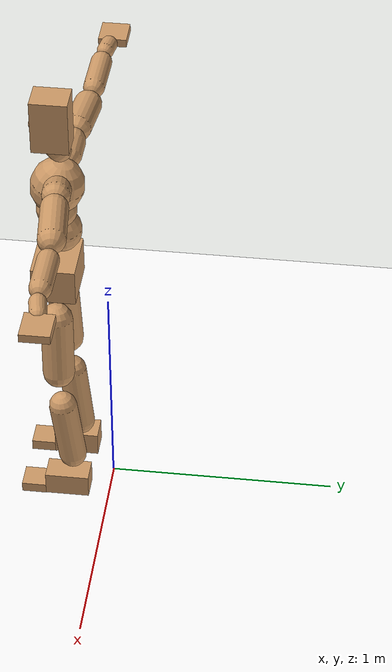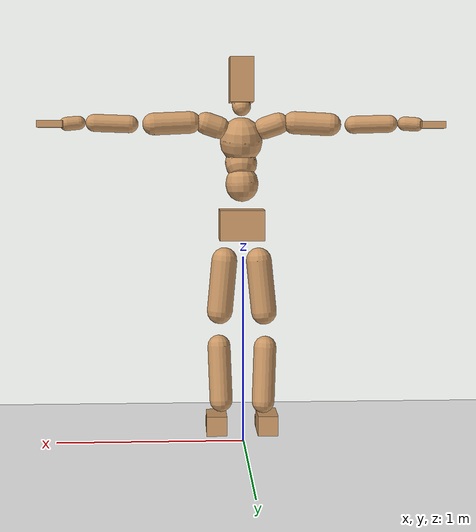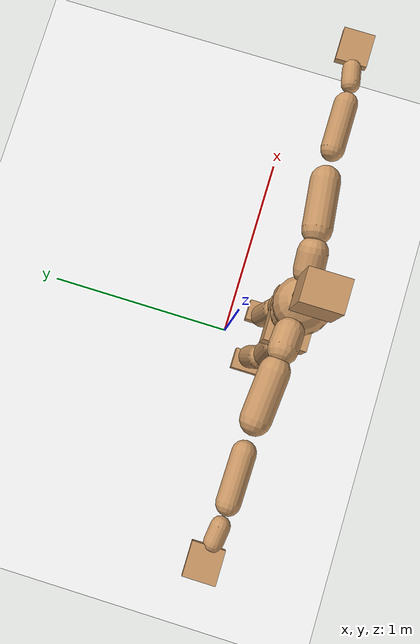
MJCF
<mujoco model="humanoid">
  <option integrator="implicitfast" />

  <visual>
    <global offwidth="1280" offheight="960" />
    <headlight active="1" ambient="0.34 0.34 0.34" diffuse="0.5 0.5 0.5" />
  </visual>

  <default>
    <joint damping="2" stiffness="2" armature="0.01" limited="true" solimplimit="0 .99 .01" />
    <geom condim="1" friction="0.7 0.005 0.0001" solimp=".99 .99 .003" solref="0.015 1" margin="0.001" rgba="0.8 0.6 .4 1" />
    <default class="smplcontact">
      <geom condim="3" friction="1. 0.005 0.0001" solref="0.015 1" solimp="0.98 0.98 0.001" priority="1" />
    </default>
    <default class="stiff_medium">
      <joint stiffness="10" />
    </default>
    <default class="stiff_medium_higher">
      <joint stiffness="50" />
    </default>
    <default class="stiff_high">
      <joint stiffness="100" />
    </default>
  </default>

  <asset>
    <texture type="skybox" builtin="gradient" rgb1="0.99 0.99 0.99" rgb2="0.608 0.828 0.892" width="100" />
    <texture builtin="flat" height="1278" mark="cross" markrgb="1 1 1" name="texgeom" random="0.01" rgb1="0.8 0.6 0.4" rgb2="0.8 0.6 0.4" type="cube" width="127" />
    <texture name="texplane" type="2d" builtin="checker" markrgb="1 1 1" rgb1="0.756 0.772 0.76" rgb2="0.6 0.6 0.6" width="100" height="100" />
    <material name="MatPlane" reflectance="0.5" texture="texplane" texrepeat="1 1" texuniform="true" />
    <material name="geom" texture="texgeom" texuniform="true" />
  </asset>

  <worldbody>
    <light name="tracking_light" pos="0 0 7" dir="0 0 -1" directional="true" cutoff="100" exponent="1" diffuse="1 1 1" specular="0.1 0.1 0.1" mode="trackcom" />
    <camera name="back" pos="0 3 2.4" xyaxes="-1 0 0 0 -1 2" mode="trackcom" />
    <camera name="side" pos="-3 0 2.4" xyaxes="0 -1 0 1 0 2" mode="trackcom" />
    <camera name="front_side" pos="-2.8 -2.8 0.8" xyaxes="0.5 -0.5 0 0.1 0.1 1" mode="trackcom" />
    <geom condim="3" name="floor" pos="0 0 0" rgba="1 1 1 1" size="100 100 .2" type="plane" material="MatPlane" />
    <body name="Pelvis" pos="-0.0018 -0.2233 1.16871" euler="90 0 0">
      <site name="Pelvis" size="0.01" />
      <freejoint name="Pelvis" />
      <geom type="box" pos="-0.0000 -0.0121 -0.0055" size="0.122935 0.08303 0.09545" quat="1.0000 0.0000 0.0000 0.0000" density="3165.830099" name="Pelvis" />
      <body name="L_Hip" pos="0.086875 -0.11425 -0.0085">
        <joint name="L_Hip_x" type="hinge" pos="0 0 0" axis="1 0 0" stiffness="20.117156100000003" range="-160.0 22.92" class="stiff_medium" damping="33.543780489530185" armature="0.024858499524521342"/>
        <joint name="L_Hip_y" type="hinge" pos="0 0 0" axis="0 1 0" stiffness="20.0743359" range="-70.0 70.0" class="stiff_medium" damping="21.332705839970544" armature="0.022669957338649162"/>
        <joint name="L_Hip_z" type="hinge" pos="0 0 0" axis="0 0 1" stiffness="20.0829193" range="-28.65 90.0" class="stiff_medium" damping="22.34492870107814" armature="0.02486171612790704"/>
        <geom type="capsule" density="2040.816327" fromto="0.008625 -0.09375 -0.001125 0.03425 -0.37525 -0.0045" size="0.070725" name="L_Hip" />
        <body name="L_Knee" pos="0.042875 -0.469 -0.005625">
          <joint name="L_Knee_x" type="hinge" pos="0 0 0" axis="1 0 0" range="-5.16 171.89" damping="17.663745268139795" armature="0.02445638967472369" stiffness="3.9867891"/>
          <joint name="L_Knee_y" type="hinge" pos="0 0 0" axis="0 1 0" range="-4.58 6.88" damping="16.915609868560246" armature="0.02230294186631026" stiffness="4.00925048"/>
          <joint name="L_Knee_z" type="hinge" pos="0 0 0" axis="0 0 1" range="-6.88 4.58" damping="17.637874770691177" armature="0.024471688790703397" stiffness="3.972634319999999"/>
          <geom type="capsule" density="1234.567901" fromto="-0.003375 -0.0995 -0.010875 -0.013625 -0.398 -0.04375" size="0.062215" name="L_Knee" />
          <body name="L_Ankle" pos="-0.017 -0.4975 -0.054625">
            <joint name="L_Ankle_x" type="hinge" pos="0 0 0" axis="1 0 0" range="-45.84 45.84" class="stiff_medium" damping="12.413170804446915" armature="0.022514347794301198" stiffness="19.01094"/>
            <joint name="L_Ankle_y" type="hinge" pos="0 0 0" axis="0 1 0" range="-74.48 22.92" class="stiff_medium" damping="6.194262443389276" armature="0.022425033642957906" stiffness="19.01094"/>
            <joint name="L_Ankle_z" type="hinge" pos="0 0 0" axis="0 0 1" range="-4.58 4.58" class="stiff_medium" damping="12.225950831613261" armature="0.02184033008494421" stiffness="19.01094"/>
            <geom type="box" pos="0.029125 -0.029875 0.03025" size="0.055545 0.05336 0.09775" quat="1.0000 0.0000 0.0000 0.0000" density="449.071558" name="L_Ankle" class="smplcontact" />
            <body name="L_Toe" pos="0.033 -0.06975 0.149125">
              <joint name="L_Toe_x" type="hinge" pos="0 0 0" axis="1 0 0" range="-91.67 22.92" armature="0.0215012957705028" damping="4.043562012954828" stiffness="3.8021880000000006"/>
              <joint name="L_Toe_y" type="hinge" pos="0 0 0" axis="0 1 0" range="-4.58 4.58" armature="0.021091335391127376" damping="4.004827644933545" stiffness="3.8021880000000006"/>
              <joint name="L_Toe_z" type="hinge" pos="0 0 0" axis="0 0 1" range="-4.58 4.58" armature="0.020262417570046605" damping="3.9253412828904537" stiffness="3.8021880000000006"/>
              <geom type="box" pos="-0.00375 0.006875 0.031" size="0.05497 0.023 0.05704" quat="1.0000 0.0000 0.0000 0.0000" density="423.206892" name="L_Toe" class="smplcontact" />
            </body>
          </body>
        </body>
      </body>
      <body name="R_Hip" pos="-0.084625 -0.113125 -0.005375">
        <joint name="R_Hip_x" type="hinge" pos="0 0 0" axis="1 0 0" stiffness="20.117156100000003" range="-160.0 22.92" class="stiff_medium" damping="33.543780489530185" armature="0.024858499524521342"/>
        <joint name="R_Hip_y" type="hinge" pos="0 0 0" axis="0 1 0" stiffness="20.0743359" range="-70.0 70.0" class="stiff_medium" damping="21.332705839970544" armature="0.022669957338649162"/>
        <joint name="R_Hip_z" type="hinge" pos="0 0 0" axis="0 0 1" stiffness="20.0829193" range="-90.0 28.65" class="stiff_medium" damping="22.34492870107814" armature="0.02486171612790704"/>
        <geom type="capsule" density="2040.816327" fromto="-0.009625 -0.095625 -0.00225 -0.03825 -0.382625 -0.008875" size="0.06969" name="R_Hip" />
        <body name="R_Knee" pos="-0.047875 -0.47825 -0.011125">
          <joint name="R_Knee_x" type="hinge" pos="0 0 0" axis="1 0 0" range="-5.16 171.89" damping="17.663745268139795" armature="0.02445638967472369" stiffness="3.9867891"/>
          <joint name="R_Knee_y" type="hinge" pos="0 0 0" axis="0 1 0" range="-6.88 4.58" damping="16.915609868560246" armature="0.02230294186631026" stiffness="4.00925048"/>
          <joint name="R_Knee_z" type="hinge" pos="0 0 0" axis="0 0 1" range="-4.58 6.88" damping="17.637874770691177" armature="0.024471688790703397" stiffness="3.972634319999999"/>
          <geom type="capsule" density="1234.567901" fromto="0.004 -0.099625 -0.010625 0.01575 -0.398375 -0.04225" size="0.062215" name="R_Knee" />
          <body name="R_Ankle" pos="0.01975 -0.498 -0.052875">
            <joint name="R_Ankle_x" type="hinge" pos="0 0 0" axis="1 0 0" range="-45.84 45.84" class="stiff_medium" damping="12.413170804446915" armature="0.022514347794301198" stiffness="19.01094"/>
            <joint name="R_Ankle_y" type="hinge" pos="0 0 0" axis="0 1 0" range="-22.92 74.48" class="stiff_medium" damping="6.194262443389276" armature="0.022425033642957906" stiffness="19.01094"/>
            <joint name="R_Ankle_z" type="hinge" pos="0 0 0" axis="0 0 1" range="-4.58 4.58" class="stiff_medium" damping="12.225950831613261" armature="0.02184033008494421" stiffness="19.01094"/>
            <geom type="box" pos="-0.0265 -0.02175 0.032" size="0.055545 0.05497 0.099475" quat="1.0000 0.0000 0.0000 0.0000" density="434.700981" name="R_Ankle" class="smplcontact" />
            <body name="R_Toe" pos="-0.03175 -0.060125 0.154125">
              <joint name="R_Toe_x" type="hinge" pos="0 0 0" axis="1 0 0" range="-91.67 22.92" armature="0.0215012957705028" damping="4.043562012954828" stiffness="3.8021880000000006"/>
              <joint name="R_Toe_y" type="hinge" pos="0 0 0" axis="0 1 0" range="-4.58 4.58" armature="0.021091335391127376" damping="4.004827644933545" stiffness="3.8021880000000006"/>
              <joint name="R_Toe_z" type="hinge" pos="0 0 0" axis="0 0 1" range="-4.58 4.58" armature="0.020262417570046605" damping="3.9253412828904537" stiffness="3.8021880000000006"/>
              <geom type="box" pos="0.00525 0.005625 0.028375" size="0.055085 0.02484 0.056695" quat="1.0000 0.0000 0.0000 0.0000" density="407.384095" name="R_Toe" class="smplcontact" />
            </body>
          </body>
        </body>
      </body>
      <body name="Torso" pos="-0.003 0.1308 -0.03204">
        <joint name="Torso_x" type="hinge" pos="0 0 0" axis="1 0 0" range="-25.78 57.3" class="stiff_medium" damping="27.9771851175194" armature="0.01990875252833071" stiffness="17.473562857142856"/>
        <joint name="Torso_y" type="hinge" pos="0 0 0" axis="0 1 0" range="-57.3 57.3" class="stiff_high" damping="41.032108452007705" armature="0.02465497905993488" stiffness="170.719464"/>
        <joint name="Torso_z" type="hinge" pos="0 0 0" axis="0 0 1" range="-34.38 34.38" class="stiff_high" damping="38.7037262184992" armature="0.021545068080434288" stiffness="173.81917959183673"/>
        <geom type="capsule" density="2040.816327" fromto="0.003 0.07296 0.0006 0.0036 0.08916 0.00072" size="0.088435" name="Torso" />
        <body name="Spine" pos="0.0066 0.16224 0.00132">
          <joint name="Spine_x" type="hinge" pos="0 0 0" axis="1 0 0" stiffness="17.1146502" range="-25.78 57.3" class="stiff_medium" damping="26.88724471348194" armature="0.018773361998434736"/>
          <joint name="Spine_y" type="hinge" pos="0 0 0" axis="0 1 0" stiffness="17.057880400000002" range="-57.3 57.3" class="stiff_high" damping="16.416483417031298" armature="0.024686255840957197"/>
          <joint name="Spine_z" type="hinge" pos="0 0 0" axis="0 0 1" stiffness="34.230740408163264" range="-34.38 34.38" class="stiff_high" damping="23.30935262312265" armature="0.022045077726373416"/>
          <geom type="capsule" density="2040.816327" fromto="0.00084 0.02856 0.01368 0.00096 0.03492 0.0168" size="0.086825" name="Spine" />
          <body name="Chest" pos="0.0018 0.06348 0.03048">
            <joint name="Chest_x" type="hinge" pos="0 0 0" axis="1 0 0" stiffness="16.799314166666665" range="-25.78 57.3" class="stiff_medium" damping="26.216484871305266" armature="0.018183389900817956"/>
            <joint name="Chest_y" type="hinge" pos="0 0 0" axis="0 1 0" stiffness="18.43460755555555" range="-57.3 57.3" class="stiff_high" damping="17.07817694638808" armature="0.02472117718443814"/>
            <joint name="Chest_z" type="hinge" pos="0 0 0" axis="0 0 1" stiffness="33.474103750000005" range="-34.38 34.38" class="stiff_high" damping="23.22021546287726" armature="0.022371290446277038"/>
            <geom type="capsule" density="2040.816327" fromto="-0.00108 0.08184 -0.02076 -0.0012 0.09996 -0.02544" size="0.11523" name="Chest" />
            <body name="Neck" pos="-0.00336 0.25668 -0.05148">
              <joint name="Neck_x" type="hinge" pos="0 0 0" axis="1 0 0" range="-28.65 57.3" class="stiff_medium_higher" damping="12.763808551103033" armature="0.01289831435140676" stiffness="63.15352700000001"/>
              <joint name="Neck_y" type="hinge" pos="0 0 0" axis="0 1 0" range="-40.11 40.11" class="stiff_medium_higher" damping="12.874021806954651" armature="0.013218010878037265" stiffness="62.69492399999999"/>
              <joint name="Neck_z" type="hinge" pos="0 0 0" axis="0 0 1" range="-40.11 40.11" class="stiff_medium_higher" damping="12.622034141340917" armature="0.012866432020450236" stiffness="61.911393000000004"/>
              <geom type="capsule" density="1000" fromto="0.0012 0.0156 0.01236 0.00492 0.0624 0.04932" size="0.05014" name="Neck" />
              <body name="Head" pos="0.00546 0.06825 0.053865">
                <joint name="Head_x" type="hinge" pos="0 0 0" axis="1 0 0" range="-28.65 57.3" class="stiff_medium_higher" damping="2.4910462837194585" armature="0.012762815625000052" stiffness="60.77529999999999"/>
                <joint name="Head_y" type="hinge" pos="0 0 0" axis="0 1 0" range="-40.11 40.11" class="stiff_medium_higher" damping="2.4910462837194536" armature="0.012762815625000003" stiffness="60.77529999999999"/>
                <joint name="Head_z" type="hinge" pos="0 0 0" axis="0 0 1" range="-40.11 40.11" class="stiff_medium_higher" damping="2.4910462837194487" armature="0.012762815624999953" stiffness="60.77529999999999"/>
                <geom type="box" pos="-0.00441 0.09198 -0.01218" size="0.06363 0.12117 0.0798" quat="1.0000 0.0000 0.0000 0.0000" density="1018.069894" name="Head" />
                <geom type="capsule" name="nose" size="0.021 0.0105" pos="0 0.0735 0.0525" quat="1 0 0 0" mass="0" contype="0" conaffinity="0" />
              </body>
            </body>
            <body name="L_Thorax" pos="0.0985 0.152125 -0.042625">
              <joint name="L_Thorax_x" type="hinge" pos="0 0 0" axis="1 0 0" range="-10.89 4.58" class="stiff_medium_higher" damping="43.15926371092657" armature="0.02325977084332514" stiffness="100.10427749999997"/>
              <joint name="L_Thorax_y" type="hinge" pos="0 0 0" axis="0 1 0" range="-28.65 17.19" class="stiff_medium_higher" damping="44.690221719373746" armature="0.024889361083363797" stiffness="100.3047"/>
              <joint name="L_Thorax_z" type="hinge" pos="0 0 0" axis="0 0 1" range="-31.51 40.11" class="stiff_medium_higher" damping="44.69070151323812" armature="0.024890837372076532" stiffness="100.30090450000002"/>
              <geom type="capsule" density="1000" fromto="0.02275 0.007625 -0.00225 0.091 0.0305 -0.008875" size="0.059915" name="L_Thorax" />
              <body name="L_Shoulder" pos="0.11375 0.038125 -0.011125">
                <joint name="L_Shoulder_x" type="hinge" pos="0 0 0" axis="1 0 0" range="-97.4 97.4" class="stiff_medium" damping="12.758502381812189" armature="0.02260763542783086" stiffness="20.0005416"/>
                <joint name="L_Shoulder_y" type="hinge" pos="0 0 0" axis="0 1 0" range="-108.86 80.21" class="stiff_medium" damping="13.383657786355482" armature="0.024826065294315237" stiffness="20.0419167"/>
                <joint name="L_Shoulder_z" type="hinge" pos="0 0 0" axis="0 0 1" range="-97.4 85.94" class="stiff_medium" damping="13.384570758886717" armature="0.024827926499511432" stiffness="20.043148499999997"/>
                <geom type="capsule" density="1000" fromto="0.064875 -0.00325 -0.006875 0.259625 -0.01275 -0.0275" size="0.059455" name="L_Shoulder" />
                <body name="L_Elbow" pos="0.3245 -0.016 -0.034375">
                  <joint name="L_Elbow_x" type="hinge" pos="0 0 0" axis="1 0 0" range="-17.19 4.58" damping="10.356445927381818" armature="0.021590820449987023" stiffness="3.97413234"/>
                  <joint name="L_Elbow_y" type="hinge" pos="0 0 0" axis="0 1 0" range="-180.0 17.19" damping="11.036449341555636" armature="0.024518815531650615" stiffness="3.9741957"/>
                  <joint name="L_Elbow_z" type="hinge" pos="0 0 0" axis="0 0 1" range="-100.84 4.58" damping="11.037395055628792" armature="0.02452857374721188" stiffness="3.9732955000000008"/>
                  <geom type="capsule" density="1000" fromto="0.06225 0.00225 -0.00025 0.24925 0.009 -0.001125" size="0.046575" name="L_Elbow" />
                  <body name="L_Wrist" pos="0.3115 0.01125 -0.0015">
                    <joint name="L_Wrist_x" type="hinge" pos="0 0 0" axis="1 0 0" range="-180.0 22.92" armature="0.021344808577429087" damping="4.060387391568212" stiffness="3.86200366"/>
                    <joint name="L_Wrist_y" type="hinge" pos="0 0 0" axis="0 1 0" range="-17.19 17.19" armature="0.023522200169745565" damping="4.267230545709342" stiffness="3.8706533400000005"/>
                    <joint name="L_Wrist_z" type="hinge" pos="0 0 0" axis="0 0 1" range="-22.92 22.92" armature="0.023642420487012445" damping="4.276580712224981" stiffness="3.8678659400000006"/>
                    <geom type="capsule" density="1000" fromto="0.021 -0.002 -0.00375 0.084 -0.008125 -0.015" size="0.03657" name="L_Wrist" class="smplcontact" />
                    <body name="L_Hand" pos="0.105 -0.01025 -0.018625">
                      <joint name="L_Hand_x" type="hinge" pos="0 0 0" axis="1 0 0" range="-17.19 17.19" armature="0.020272592717515147" damping="3.926326750524553" stiffness="3.8021880000000006"/>
                      <joint name="L_Hand_y" type="hinge" pos="0 0 0" axis="0 1 0" range="-51.57 51.57" armature="0.02203670957240944" damping="4.093597750040918" stiffness="3.8021880000000006"/>
                      <joint name="L_Hand_z" type="hinge" pos="0 0 0" axis="0 0 1" range="-91.67 91.67" armature="0.022506959023354135" damping="4.137044585572866" stiffness="3.8021880000000006"/>
                      <geom type="box" pos="0.061625 0.00125 -0.00725" size="0.067275 0.01817 0.06187" quat="1.0000 0.0000 0.0000 0.0000" density="400.552564" name="L_Hand" class="smplcontact" />
                    </body>
                  </body>
                </body>
              </body>
            </body>
            <body name="R_Thorax" pos="-0.10225 0.1485 -0.04825">
              <joint name="R_Thorax_x" type="hinge" pos="0 0 0" axis="1 0 0" range="-10.89 4.58" class="stiff_medium_higher" damping="43.15926371092657" armature="0.02325977084332514" stiffness="100.10427749999997"/>
              <joint name="R_Thorax_y" type="hinge" pos="0 0 0" axis="0 1 0" range="-17.19 28.65" class="stiff_medium_higher" damping="44.690221719373746" armature="0.024889361083363797" stiffness="100.3047"/>
              <joint name="R_Thorax_z" type="hinge" pos="0 0 0" axis="0 0 1" range="-40.11 31.51" class="stiff_medium_higher" damping="44.69070151323812" armature="0.024890837372076532" stiffness="100.30090450000002"/>
              <geom type="capsule" density="1000" fromto="-0.024 0.008125 -0.00225 -0.096 0.0325 -0.009125" size="0.058765" name="R_Thorax" />
              <body name="R_Shoulder" pos="-0.12 0.04075 -0.011375">
                <joint name="R_Shoulder_x" type="hinge" pos="0 0 0" axis="1 0 0" range="-97.4 97.4" class="stiff_medium" damping="12.758502381812189" armature="0.02260763542783086" stiffness="20.0005416"/>
                <joint name="R_Shoulder_y" type="hinge" pos="0 0 0" axis="0 1 0" range="-80.21 108.86" class="stiff_medium" damping="13.383657786355482" armature="0.024826065294315237" stiffness="20.0419167"/>
                <joint name="R_Shoulder_z" type="hinge" pos="0 0 0" axis="0 0 1" range="-85.94 97.4" class="stiff_medium" damping="13.384570758886717" armature="0.024827926499511432" stiffness="20.043148499999997"/>
                <geom type="capsule" density="1000" fromto="-0.063375 -0.003375 -0.005375 -0.25375 -0.013375 -0.021375" size="0.061065" name="R_Shoulder" />
                <body name="R_Elbow" pos="-0.317125 -0.016625 -0.02675">
                  <joint name="R_Elbow_x" type="hinge" pos="0 0 0" axis="1 0 0" range="-17.19 4.58" damping="10.356445927381818" armature="0.021590820449987023" stiffness="3.97413234"/>
                  <joint name="R_Elbow_y" type="hinge" pos="0 0 0" axis="0 1 0" range="-17.19 180.0" damping="11.036449341555636" armature="0.024518815531650615" stiffness="3.9741957"/>
                  <joint name="R_Elbow_z" type="hinge" pos="0 0 0" axis="0 0 1" range="-4.58 100.84" damping="11.037395055628792" armature="0.02452857374721188" stiffness="3.9732955000000008"/>
                  <geom type="capsule" density="1000" fromto="-0.063875 0.002 -0.001375 -0.25525 0.00775 -0.0055" size="0.04692" name="R_Elbow" />
                  <body name="R_Wrist" pos="-0.319125 0.00975 -0.007">
                    <joint name="R_Wrist_x" type="hinge" pos="0 0 0" axis="1 0 0" range="-180.0 22.92" armature="0.021344808577429087" damping="4.060387391568212" stiffness="3.86200366"/>
                    <joint name="R_Wrist_y" type="hinge" pos="0 0 0" axis="0 1 0" range="-17.19 17.19" armature="0.023522200169745565" damping="4.267230545709342" stiffness="3.8706533400000005"/>
                    <joint name="R_Wrist_z" type="hinge" pos="0 0 0" axis="0 0 1" range="-22.92 22.92" armature="0.023642420487012445" damping="4.276580712224981" stiffness="3.8678659400000006"/>
                    <geom type="capsule" density="1000" fromto="-0.021125 -0.0015 -0.002625 -0.084625 -0.006125 -0.010375" size="0.03749" name="R_Wrist" class="smplcontact" />
                    <body name="R_Hand" pos="-0.10575 -0.007625 -0.012875">
                      <joint name="R_Hand_x" type="hinge" pos="0 0 0" axis="1 0 0" range="-17.19 17.19" armature="0.020272592717515147" damping="3.926326750524553" stiffness="3.8021880000000006"/>
                      <joint name="R_Hand_y" type="hinge" pos="0 0 0" axis="0 1 0" range="-51.57 51.57" armature="0.02203670957240944" damping="4.093597750040918" stiffness="3.8021880000000006"/>
                      <joint name="R_Hand_z" type="hinge" pos="0 0 0" axis="0 0 1" range="-91.67 91.67" armature="0.022506959023354135" damping="4.137044585572866" stiffness="3.8021880000000006"/>
                      <geom type="box" pos="-0.05775 -0.001125 -0.009875" size="0.065435 0.01886 0.06279" quat="1.0000 0.0000 0.0000 0.0000" density="403.679611" name="R_Hand" class="smplcontact" />
                    </body>
                  </body>
                </body>
              </body>
            </body>
          </body>
        </body>
      </body>
    </body>
  </worldbody>
  <actuator>
    <general name="L_Hip_x" joint="L_Hip_x" biastype="affine" gainprm="578.0263751668842" biasprm="-433.17218187118135 -362.1088098000001 -4.472504065270692" ctrllimited="true" ctrlrange="-1 1" forcerange="-724.2176196000001 724.2176196000001" />
    <general name="L_Hip_y" joint="L_Hip_y" biastype="affine" gainprm="441.457703323937" biasprm="0.0 -361.33804620000006 -4.2665411679941085" ctrllimited="true" ctrlrange="-1 1" forcerange="-722.6760924000001 722.6760924000001" />
    <general name="L_Hip_z" joint="L_Hip_z" biastype="affine" gainprm="374.2953766709527" biasprm="193.53578894869736 -361.4925474 -4.4689857402156274" ctrllimited="true" ctrlrange="-1 1" forcerange="-722.9850948 722.9850948" />
    <general name="L_Knee_x" joint="L_Knee_x" biastype="affine" gainprm="554.3819409896047" biasprm="522.0677832318372 -358.81101900000004 -4.415936317034949" ctrllimited="true" ctrlrange="-1 1" forcerange="-717.6220380000001 717.6220380000001" />
    <general name="L_Knee_y" joint="L_Knee_y" biastype="affine" gainprm="36.0859122627682" biasprm="7.242373316262378 -360.83254320000003 -4.2289024671400615" ctrllimited="true" ctrlrange="-1 1" forcerange="-721.6650864000001 721.6650864000001" />
    <general name="L_Knee_z" joint="L_Knee_z" biastype="affine" gainprm="35.7563425479921" biasprm="-7.176229307188642 -357.53708879999994 -4.409468692672794" ctrllimited="true" ctrlrange="-1 1" forcerange="-715.0741775999999 715.0741775999999" />
    <general name="L_Ankle_x" joint="L_Ankle_x" biastype="affine" gainprm="136.88885068068893" biasprm="0.0 -171.09846000000002 -4.137723601482305" ctrllimited="true" ctrlrange="-1 1" forcerange="-342.19692000000003 342.19692000000003" />
    <general name="L_Ankle_y" joint="L_Ankle_y" biastype="affine" gainprm="145.42947269087153" biasprm="-76.98504735052707 -171.09846000000002 -4.12950829559285" ctrllimited="true" ctrlrange="-1 1" forcerange="-342.19692000000003 342.19692000000003" />
    <general name="L_Ankle_z" joint="L_Ankle_z" biastype="affine" gainprm="13.676940142180523" biasprm="0.0 -171.09846000000002 -4.075316943871087" ctrllimited="true" ctrlrange="-1 1" forcerange="-342.19692000000003 342.19692000000003" />
    <general name="L_Toe_x" joint="L_Toe_x" biastype="affine" gainprm="136.87690575480053" biasprm="-82.12136548252498 -136.878768 -1.6174248051819313" ctrllimited="true" ctrlrange="-1 1" forcerange="-273.757536 273.757536" />
    <general name="L_Toe_y" joint="L_Toe_y" biastype="affine" gainprm="10.94155211374442" biasprm="0.0 -136.878768 -1.6019310579734183" ctrllimited="true" ctrlrange="-1 1" forcerange="-273.757536 273.757536" />
    <general name="L_Toe_z" joint="L_Toe_z" biastype="affine" gainprm="10.94155211374442" biasprm="0.0 -136.878768 -1.5701365131561815" ctrllimited="true" ctrlrange="-1 1" forcerange="-273.757536 273.757536" />
    <general name="R_Hip_x" joint="R_Hip_x" biastype="affine" gainprm="578.0263751668842" biasprm="-433.17218187118135 -362.1088098000001 -4.472504065270692" ctrllimited="true" ctrlrange="-1 1" forcerange="-724.2176196000001 724.2176196000001" />
    <general name="R_Hip_y" joint="R_Hip_y" biastype="affine" gainprm="441.457703323937" biasprm="0.0 -361.33804620000006 -4.2665411679941085" ctrllimited="true" ctrlrange="-1 1" forcerange="-722.6760924000001 722.6760924000001" />
    <general name="R_Hip_z" joint="R_Hip_z" biastype="affine" gainprm="374.2953766709527" biasprm="-193.53578894869736 -361.4925474 -4.4689857402156274" ctrllimited="true" ctrlrange="-1 1" forcerange="-722.9850948 722.9850948" />
    <general name="R_Knee_x" joint="R_Knee_x" biastype="affine" gainprm="554.3819409896047" biasprm="522.0677832318372 -358.81101900000004 -4.415936317034949" ctrllimited="true" ctrlrange="-1 1" forcerange="-717.6220380000001 717.6220380000001" />
    <general name="R_Knee_y" joint="R_Knee_y" biastype="affine" gainprm="36.0859122627682" biasprm="-7.242373316262378 -360.83254320000003 -4.2289024671400615" ctrllimited="true" ctrlrange="-1 1" forcerange="-721.6650864000001 721.6650864000001" />
    <general name="R_Knee_z" joint="R_Knee_z" biastype="affine" gainprm="35.7563425479921" biasprm="7.176229307188642 -357.53708879999994 -4.409468692672794" ctrllimited="true" ctrlrange="-1 1" forcerange="-715.0741775999999 715.0741775999999" />
    <general name="R_Ankle_x" joint="R_Ankle_x" biastype="affine" gainprm="136.88885068068893" biasprm="0.0 -171.09846000000002 -4.137723601482305" ctrllimited="true" ctrlrange="-1 1" forcerange="-342.19692000000003 342.19692000000003" />
    <general name="R_Ankle_y" joint="R_Ankle_y" biastype="affine" gainprm="145.42947269087153" biasprm="76.98504735052707 -171.09846000000002 -4.12950829559285" ctrllimited="true" ctrlrange="-1 1" forcerange="-342.19692000000003 342.19692000000003" />
    <general name="R_Ankle_z" joint="R_Ankle_z" biastype="affine" gainprm="13.676940142180523" biasprm="0.0 -171.09846000000002 -4.075316943871087" ctrllimited="true" ctrlrange="-1 1" forcerange="-342.19692000000003 342.19692000000003" />
    <general name="R_Toe_x" joint="R_Toe_x" biastype="affine" gainprm="136.87690575480053" biasprm="-82.12136548252498 -136.878768 -1.6174248051819313" ctrllimited="true" ctrlrange="-1 1" forcerange="-273.757536 273.757536" />
    <general name="R_Toe_y" joint="R_Toe_y" biastype="affine" gainprm="10.94155211374442" biasprm="0.0 -136.878768 -1.6019310579734183" ctrllimited="true" ctrlrange="-1 1" forcerange="-273.757536 273.757536" />
    <general name="R_Toe_z" joint="R_Toe_z" biastype="affine" gainprm="10.94155211374442" biasprm="0.0 -136.878768 -1.5701365131561815" ctrllimited="true" ctrlrange="-1 1" forcerange="-273.757536 273.757536" />
    <general name="Torso_x" joint="Torso_x" biastype="affine" gainprm="304.04409145144" biasprm="115.3523081674216 -419.36550857142856 -7.460582698005173" ctrllimited="true" ctrlrange="-1 1" forcerange="-629.0482628571428 629.0482628571428" />
    <general name="Torso_y" joint="Torso_y" biastype="affine" gainprm="409.75689464037094" biasprm="0.0 -409.7267136 -8.206421690401541" ctrllimited="true" ctrlrange="-1 1" forcerange="-614.5900704 614.5900704" />
    <general name="Torso_z" joint="Torso_z" biastype="affine" gainprm="250.3180560307569" biasprm="0.0 -417.1660310204081 -7.74074524369984" ctrllimited="true" ctrlrange="-1 1" forcerange="-625.7490465306122 625.7490465306122" />
    <general name="Spine_x" joint="Spine_x" biastype="affine" gainprm="297.798927048302" biasprm="112.98293428698216 -410.7516048 -7.169931923595184" ctrllimited="true" ctrlrange="-1 1" forcerange="-616.1274072 616.1274072" />
    <general name="Spine_y" joint="Spine_y" biastype="affine" gainprm="409.41928577346346" biasprm="0.0 -409.38912960000005 -8.208241708515649" ctrllimited="true" ctrlrange="-1 1" forcerange="-614.0836944000001 614.0836944000001" />
    <general name="Spine_z" joint="Spine_z" biastype="affine" gainprm="246.4794856236717" biasprm="0.0 -410.7688848979592 -7.76978420770755" ctrllimited="true" ctrlrange="-1 1" forcerange="-616.1533273469388 616.1533273469388" />
    <general name="Chest_x" joint="Chest_x" biastype="affine" gainprm="292.3120061186336" biasprm="110.901232942457 -403.18354 -6.991062632348071" ctrllimited="true" ctrlrange="-1 1" forcerange="-604.77531 604.77531" />
    <general name="Chest_y" joint="Chest_y" biastype="affine" gainprm="442.46317138614984" biasprm="0.0 -442.4305813333333 -8.53908847319404" ctrllimited="true" ctrlrange="-1 1" forcerange="-663.6458719999999 663.6458719999999" />
    <general name="Chest_z" joint="Chest_z" biastype="affine" gainprm="241.0313003935439" biasprm="0.0 -401.689245 -7.740071820959087" ctrllimited="true" ctrlrange="-1 1" forcerange="-602.5338675 602.5338675" />
    <general name="Neck_x" joint="Neck_x" biastype="affine" gainprm="34.105416647448216" biasprm="11.368472215816071 -45.47053944000001 -1.0211046840882427" ctrllimited="true" ctrlrange="-1 1" forcerange="-90.94107888000002 90.94107888000002" />
    <general name="Neck_y" joint="Neck_y" biastype="affine" gainprm="31.600569266491803" biasprm="0.0 -45.14034528 -1.0299217445563722" ctrllimited="true" ctrlrange="-1 1" forcerange="-90.28069056 90.28069056" />
    <general name="Neck_z" joint="Neck_z" biastype="affine" gainprm="31.205640553635504" biasprm="0.0 -44.57620296 -1.0097627313072735" ctrllimited="true" ctrlrange="-1 1" forcerange="-89.15240592 89.15240592" />
    <general name="Head_x" joint="Head_x" biastype="affine" gainprm="21.88071964556742" biasprm="7.29357321518914 -29.172143999999996 -0.9964185134877834" ctrllimited="true" ctrlrange="-1 1" forcerange="-58.34428799999999 58.34428799999999" />
    <general name="Head_y" joint="Head_y" biastype="affine" gainprm="20.42200500252959" biasprm="0.0 -29.172143999999996 -0.9964185134877814" ctrllimited="true" ctrlrange="-1 1" forcerange="-58.34428799999999 58.34428799999999" />
    <general name="Head_z" joint="Head_z" biastype="affine" gainprm="20.42200500252959" biasprm="0.0 -29.172143999999996 -0.9964185134877795" ctrllimited="true" ctrlrange="-1 1" forcerange="-58.34428799999999 58.34428799999999" />
    <general name="L_Thorax_x" joint="L_Thorax_x" biastype="affine" gainprm="32.434078448757056" biasprm="-13.22941402790285 -240.25026599999993 -3.4527410968741252" ctrllimited="true" ctrlrange="-1 1" forcerange="-480.50053199999985 480.50053199999985" />
    <general name="L_Thorax_y" joint="L_Thorax_y" biastype="affine" gainprm="96.29960504054539" biasprm="-24.074901260136347 -240.73128 -3.5752177375498997" ctrllimited="true" ctrlrange="-1 1" forcerange="-481.46256 481.46256" />
    <general name="L_Thorax_z" joint="L_Thorax_z" biastype="affine" gainprm="150.45193572032198" biasprm="18.065996190935056 -240.72217080000004 -3.5752561210590494" ctrllimited="true" ctrlrange="-1 1" forcerange="-481.4443416000001 481.4443416000001" />
    <general name="L_Shoulder_x" joint="L_Shoulder_x" biastype="affine" gainprm="163.19968570629132" biasprm="0.0 -96.00259968 -3.4022673018165843" ctrllimited="true" ctrlrange="-1 1" forcerange="-192.00519936 192.00519936" />
    <general name="L_Shoulder_y" joint="L_Shoulder_y" biastype="affine" gainprm="158.7268824058687" biasprm="-24.05207161859702 -96.20120016 -3.5689754096947954" ctrllimited="true" ctrlrange="-1 1" forcerange="-192.40240032 192.40240032" />
    <general name="L_Shoulder_z" joint="L_Shoulder_z" biastype="affine" gainprm="153.9259279710522" biasprm="-9.621419954992158 -96.20711279999998 -3.569218869036458" ctrllimited="true" ctrlrange="-1 1" forcerange="-192.41422559999995 192.41422559999995" />
    <general name="L_Elbow_x" joint="L_Elbow_x" biastype="affine" gainprm="27.180073506056786" biasprm="-15.743717359273138 -143.06876424 -1.657031348381091" ctrllimited="true" ctrlrange="-1 1" forcerange="-286.13752848 286.13752848" />
    <general name="L_Elbow_y" joint="L_Elbow_y" biastype="affine" gainprm="246.19770987273438" biasprm="-203.27323466899887 -143.07104520000001 -1.765831894648902" ctrllimited="true" ctrlrange="-1 1" forcerange="-286.14209040000003 286.14209040000003" />
    <general name="L_Elbow_z" joint="L_Elbow_z" biastype="affine" gainprm="131.59026150012488" biasprm="-120.1563135268642 -143.03863800000002 -1.7659832089006067" ctrllimited="true" ctrlrange="-1 1" forcerange="-286.07727600000004 286.07727600000004" />
    <general name="L_Wrist_x" joint="L_Wrist_x" biastype="affine" gainprm="41.033272747860764" biasprm="-31.763781210496596 -23.172021960000002 -1.6241549566272848" ctrllimited="true" ctrlrange="-1 1" forcerange="-46.344043920000004 46.344043920000004" />
    <general name="L_Wrist_y" joint="L_Wrist_y" biastype="affine" gainprm="6.967689223888586" biasprm="0.0 -23.223920040000003 -1.706892218283737" ctrllimited="true" ctrlrange="-1 1" forcerange="-46.447840080000006 46.447840080000006" />
    <general name="L_Wrist_z" joint="L_Wrist_z" biastype="affine" gainprm="9.283562045741077" biasprm="0.0 -23.207195640000002 -1.7106322848899926" ctrllimited="true" ctrlrange="-1 1" forcerange="-46.414391280000004 46.414391280000004" />
    <general name="L_Hand_x" joint="L_Hand_x" biastype="affine" gainprm="6.844442534034448" biasprm="0.0 -22.813128000000003 -1.5705307002098214" ctrllimited="true" ctrlrange="-1 1" forcerange="-45.626256000000005 45.626256000000005" />
    <general name="L_Hand_y" joint="L_Hand_y" biastype="affine" gainprm="20.533327602103338" biasprm="0.0 -22.813128000000003 -1.6374391000163673" ctrllimited="true" ctrlrange="-1 1" forcerange="-45.626256000000005 45.626256000000005" />
    <general name="L_Hand_z" joint="L_Hand_z" biastype="affine" gainprm="36.49971187288759" biasprm="0.0 -22.813128000000003 -1.6548178342291466" ctrllimited="true" ctrlrange="-1 1" forcerange="-45.626256000000005 45.626256000000005" />
    <general name="R_Thorax_x" joint="R_Thorax_x" biastype="affine" gainprm="32.434078448757056" biasprm="-13.22941402790285 -240.25026599999993 -3.4527410968741252" ctrllimited="true" ctrlrange="-1 1" forcerange="-480.50053199999985 480.50053199999985" />
    <general name="R_Thorax_y" joint="R_Thorax_y" biastype="affine" gainprm="96.29960504054539" biasprm="24.074901260136333 -240.73128 -3.5752177375498997" ctrllimited="true" ctrlrange="-1 1" forcerange="-481.46256 481.46256" />
    <general name="R_Thorax_z" joint="R_Thorax_z" biastype="affine" gainprm="150.45193572032198" biasprm="-18.065996190935056 -240.72217080000004 -3.5752561210590494" ctrllimited="true" ctrlrange="-1 1" forcerange="-481.4443416000001 481.4443416000001" />
    <general name="R_Shoulder_x" joint="R_Shoulder_x" biastype="affine" gainprm="163.19968570629132" biasprm="0.0 -96.00259968 -3.4022673018165843" ctrllimited="true" ctrlrange="-1 1" forcerange="-192.00519936 192.00519936" />
    <general name="R_Shoulder_y" joint="R_Shoulder_y" biastype="affine" gainprm="158.7268824058687" biasprm="24.05207161859702 -96.20120016 -3.5689754096947954" ctrllimited="true" ctrlrange="-1 1" forcerange="-192.40240032 192.40240032" />
    <general name="R_Shoulder_z" joint="R_Shoulder_z" biastype="affine" gainprm="153.9259279710522" biasprm="9.621419954992136 -96.20711279999998 -3.569218869036458" ctrllimited="true" ctrlrange="-1 1" forcerange="-192.41422559999995 192.41422559999995" />
    <general name="R_Elbow_x" joint="R_Elbow_x" biastype="affine" gainprm="27.180073506056786" biasprm="-15.743717359273138 -143.06876424 -1.657031348381091" ctrllimited="true" ctrlrange="-1 1" forcerange="-286.13752848 286.13752848" />
    <general name="R_Elbow_y" joint="R_Elbow_y" biastype="affine" gainprm="246.19770987273438" biasprm="203.27323466899887 -143.07104520000001 -1.765831894648902" ctrllimited="true" ctrlrange="-1 1" forcerange="-286.14209040000003 286.14209040000003" />
    <general name="R_Elbow_z" joint="R_Elbow_z" biastype="affine" gainprm="131.59026150012488" biasprm="120.15631352686418 -143.03863800000002 -1.7659832089006067" ctrllimited="true" ctrlrange="-1 1" forcerange="-286.07727600000004 286.07727600000004" />
    <general name="R_Wrist_x" joint="R_Wrist_x" biastype="affine" gainprm="41.033272747860764" biasprm="-31.763781210496596 -23.172021960000002 -1.6241549566272848" ctrllimited="true" ctrlrange="-1 1" forcerange="-46.344043920000004 46.344043920000004" />
    <general name="R_Wrist_y" joint="R_Wrist_y" biastype="affine" gainprm="6.967689223888586" biasprm="0.0 -23.223920040000003 -1.706892218283737" ctrllimited="true" ctrlrange="-1 1" forcerange="-46.447840080000006 46.447840080000006" />
    <general name="R_Wrist_z" joint="R_Wrist_z" biastype="affine" gainprm="9.283562045741077" biasprm="0.0 -23.207195640000002 -1.7106322848899926" ctrllimited="true" ctrlrange="-1 1" forcerange="-46.414391280000004 46.414391280000004" />
    <general name="R_Hand_x" joint="R_Hand_x" biastype="affine" gainprm="6.844442534034448" biasprm="0.0 -22.813128000000003 -1.5705307002098214" ctrllimited="true" ctrlrange="-1 1" forcerange="-45.626256000000005 45.626256000000005" />
    <general name="R_Hand_y" joint="R_Hand_y" biastype="affine" gainprm="20.533327602103338" biasprm="0.0 -22.813128000000003 -1.6374391000163673" ctrllimited="true" ctrlrange="-1 1" forcerange="-45.626256000000005 45.626256000000005" />
    <general name="R_Hand_z" joint="R_Hand_z" biastype="affine" gainprm="36.49971187288759" biasprm="0.0 -22.813128000000003 -1.6548178342291466" ctrllimited="true" ctrlrange="-1 1" forcerange="-45.626256000000005 45.626256000000005" />
  </actuator>
  <contact>
    <exclude body1="Torso" body2="Chest" />
    <exclude body1="Head" body2="Chest" />
    <exclude body1="R_Knee" body2="R_Toe" />
    <exclude body1="R_Knee" body2="L_Ankle" />
    <exclude body1="R_Knee" body2="L_Toe" />
    <exclude body1="L_Knee" body2="L_Toe" />
    <exclude body1="L_Knee" body2="R_Ankle" />
    <exclude body1="L_Knee" body2="R_Toe" />
    <exclude body1="L_Shoulder" body2="Chest" />
    <exclude body1="R_Shoulder" body2="Chest" />
  </contact>
  <sensor>
    <framelinvel name="sensor_Pelvis_framelinvel" objtype="xbody" objname="Pelvis" />
    <framelinvel name="sensor_L_Hip_framelinvel" objtype="xbody" objname="L_Hip" />
    <framelinvel name="sensor_L_Knee_framelinvel" objtype="xbody" objname="L_Knee" />
    <framelinvel name="sensor_L_Ankle_framelinvel" objtype="xbody" objname="L_Ankle" />
    <framelinvel name="sensor_L_Toe_framelinvel" objtype="xbody" objname="L_Toe" />
    <framelinvel name="sensor_R_Hip_framelinvel" objtype="xbody" objname="R_Hip" />
    <framelinvel name="sensor_R_Knee_framelinvel" objtype="xbody" objname="R_Knee" />
    <framelinvel name="sensor_R_Ankle_framelinvel" objtype="xbody" objname="R_Ankle" />
    <framelinvel name="sensor_R_Toe_framelinvel" objtype="xbody" objname="R_Toe" />
    <framelinvel name="sensor_Torso_framelinvel" objtype="xbody" objname="Torso" />
    <framelinvel name="sensor_Spine_framelinvel" objtype="xbody" objname="Spine" />
    <framelinvel name="sensor_Chest_framelinvel" objtype="xbody" objname="Chest" />
    <framelinvel name="sensor_Neck_framelinvel" objtype="xbody" objname="Neck" />
    <framelinvel name="sensor_Head_framelinvel" objtype="xbody" objname="Head" />
    <framelinvel name="sensor_L_Thorax_framelinvel" objtype="xbody" objname="L_Thorax" />
    <framelinvel name="sensor_L_Shoulder_framelinvel" objtype="xbody" objname="L_Shoulder" />
    <framelinvel name="sensor_L_Elbow_framelinvel" objtype="xbody" objname="L_Elbow" />
    <framelinvel name="sensor_L_Wrist_framelinvel" objtype="xbody" objname="L_Wrist" />
    <framelinvel name="sensor_L_Hand_framelinvel" objtype="xbody" objname="L_Hand" />
    <framelinvel name="sensor_R_Thorax_framelinvel" objtype="xbody" objname="R_Thorax" />
    <framelinvel name="sensor_R_Shoulder_framelinvel" objtype="xbody" objname="R_Shoulder" />
    <framelinvel name="sensor_R_Elbow_framelinvel" objtype="xbody" objname="R_Elbow" />
    <framelinvel name="sensor_R_Wrist_framelinvel" objtype="xbody" objname="R_Wrist" />
    <framelinvel name="sensor_R_Hand_framelinvel" objtype="xbody" objname="R_Hand" />
    <frameangvel name="sensor_Pelvis_frameangvel" objtype="xbody" objname="Pelvis" />
    <frameangvel name="sensor_L_Hip_frameangvel" objtype="xbody" objname="L_Hip" />
    <frameangvel name="sensor_L_Knee_frameangvel" objtype="xbody" objname="L_Knee" />
    <frameangvel name="sensor_L_Ankle_frameangvel" objtype="xbody" objname="L_Ankle" />
    <frameangvel name="sensor_L_Toe_frameangvel" objtype="xbody" objname="L_Toe" />
    <frameangvel name="sensor_R_Hip_frameangvel" objtype="xbody" objname="R_Hip" />
    <frameangvel name="sensor_R_Knee_frameangvel" objtype="xbody" objname="R_Knee" />
    <frameangvel name="sensor_R_Ankle_frameangvel" objtype="xbody" objname="R_Ankle" />
    <frameangvel name="sensor_R_Toe_frameangvel" objtype="xbody" objname="R_Toe" />
    <frameangvel name="sensor_Torso_frameangvel" objtype="xbody" objname="Torso" />
    <frameangvel name="sensor_Spine_frameangvel" objtype="xbody" objname="Spine" />
    <frameangvel name="sensor_Chest_frameangvel" objtype="xbody" objname="Chest" />
    <frameangvel name="sensor_Neck_frameangvel" objtype="xbody" objname="Neck" />
    <frameangvel name="sensor_Head_frameangvel" objtype="xbody" objname="Head" />
    <frameangvel name="sensor_L_Thorax_frameangvel" objtype="xbody" objname="L_Thorax" />
    <frameangvel name="sensor_L_Shoulder_frameangvel" objtype="xbody" objname="L_Shoulder" />
    <frameangvel name="sensor_L_Elbow_frameangvel" objtype="xbody" objname="L_Elbow" />
    <frameangvel name="sensor_L_Wrist_frameangvel" objtype="xbody" objname="L_Wrist" />
    <frameangvel name="sensor_L_Hand_frameangvel" objtype="xbody" objname="L_Hand" />
    <frameangvel name="sensor_R_Thorax_frameangvel" objtype="xbody" objname="R_Thorax" />
    <frameangvel name="sensor_R_Shoulder_frameangvel" objtype="xbody" objname="R_Shoulder" />
    <frameangvel name="sensor_R_Elbow_frameangvel" objtype="xbody" objname="R_Elbow" />
    <frameangvel name="sensor_R_Wrist_frameangvel" objtype="xbody" objname="R_Wrist" />
    <frameangvel name="sensor_R_Hand_frameangvel" objtype="xbody" objname="R_Hand" />
    <subtreelinvel name="Chest_subtreelinvel" body="Chest" />
    <gyro name="Pelvis_gyro" site="Pelvis" />
  </sensor>
</mujoco>
